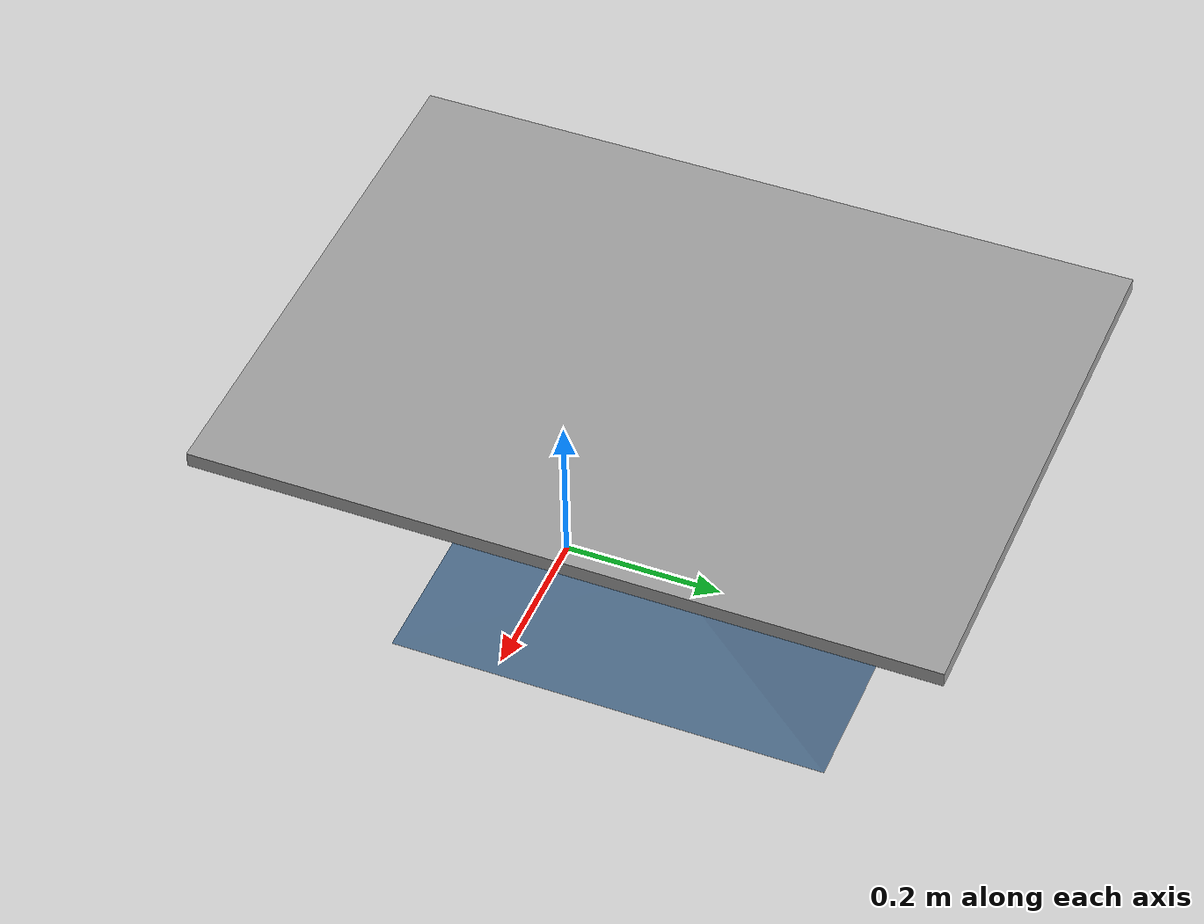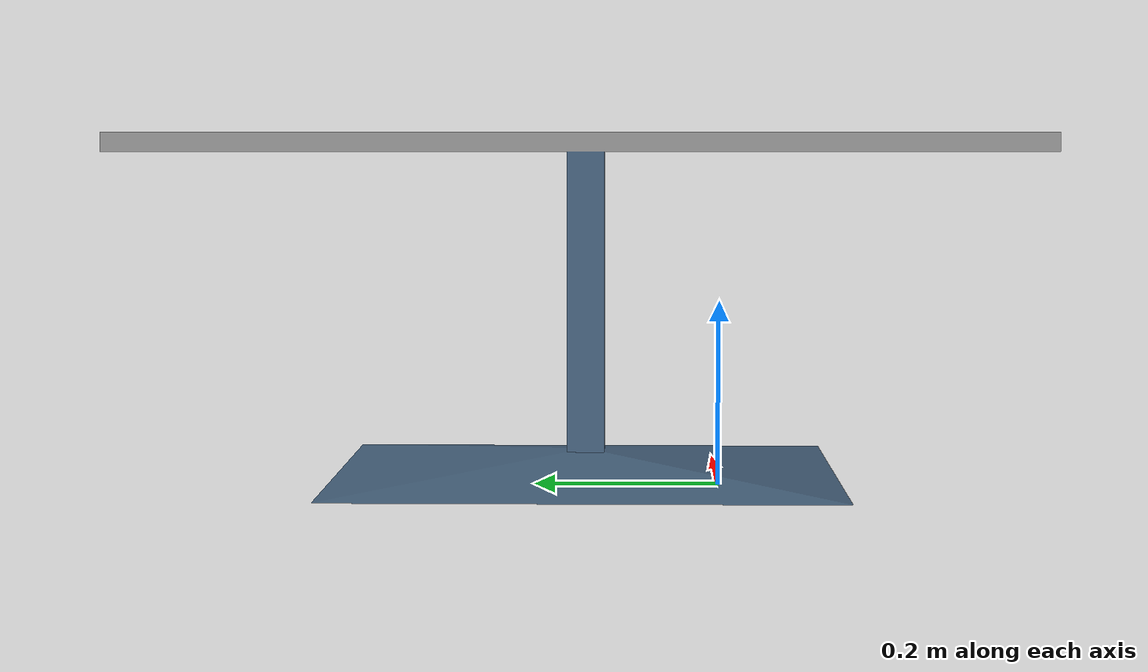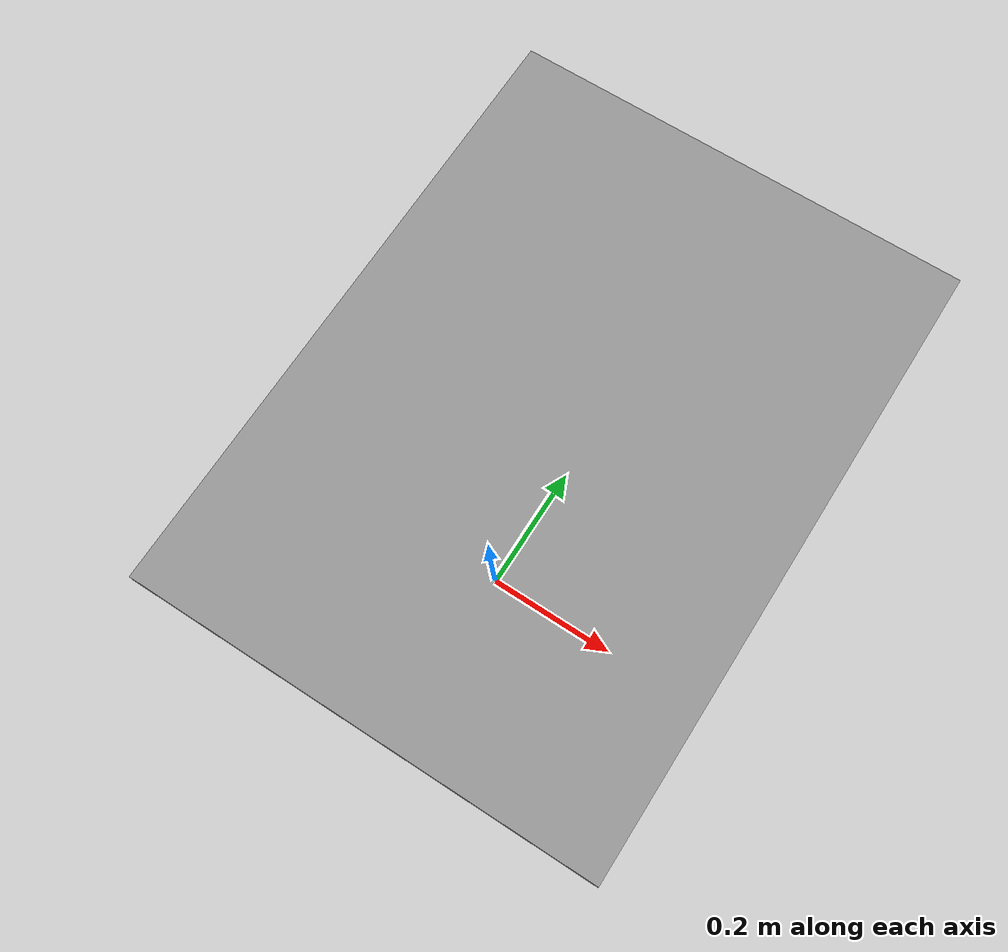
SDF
<?xml version="1.0" ?>
<sdf version="1.4">
  <model name="cafe_table_scaled">
    <link name="link">
      <inertial>
        <mass>15</mass>
        <inertia>
          <ixx>0.0</ixx>
          <ixy>0.0</ixy>
          <ixz>0.0</ixz>
          <iyy>0.0</iyy>
          <iyz>0.0</iyz>
          <izz>0.1</izz>
        </inertia>
      </inertial>
      <collision name="collision">
        <pose>0 0 0 0 0 0</pose>
        <geometry>
          <mesh>
            <uri>model://cafe_table_scaled/meshes/cafe_table_scaled.dae</uri>
          </mesh>
        </geometry>
      </collision>
      <visual name="visual">
        <pose>0 0 0 0 0 0</pose>
        <geometry>
          <mesh>
            <uri>model://cafe_table_scaled/meshes/cafe_table_scaled.dae</uri>
          </mesh>
        </geometry>
      </visual>
    </link>
    <static>1</static>
  </model>
</sdf>
